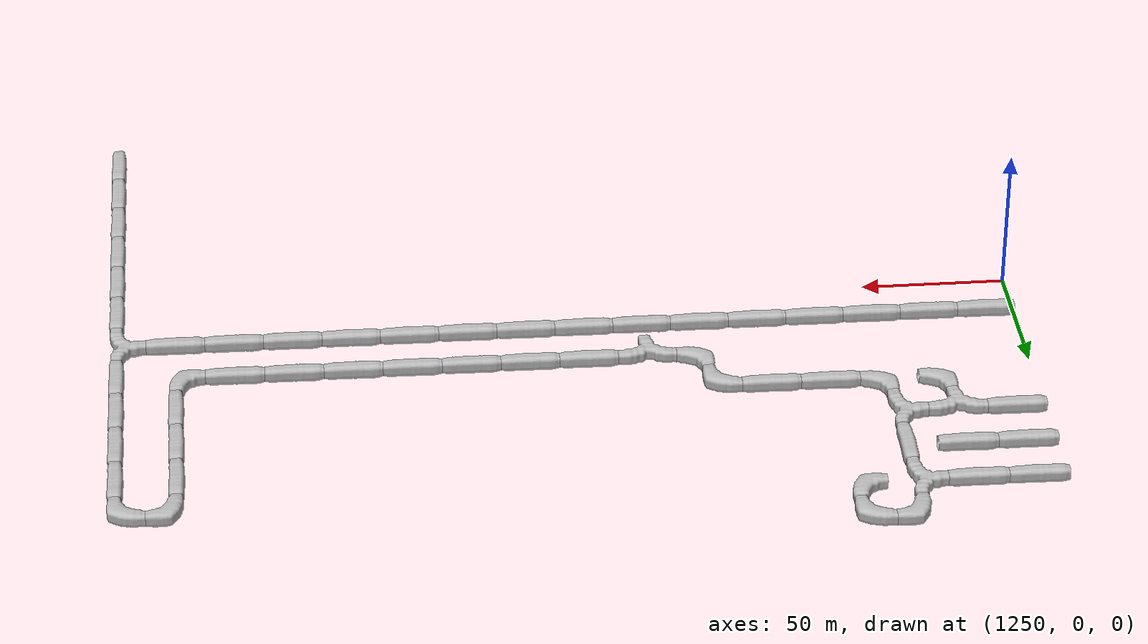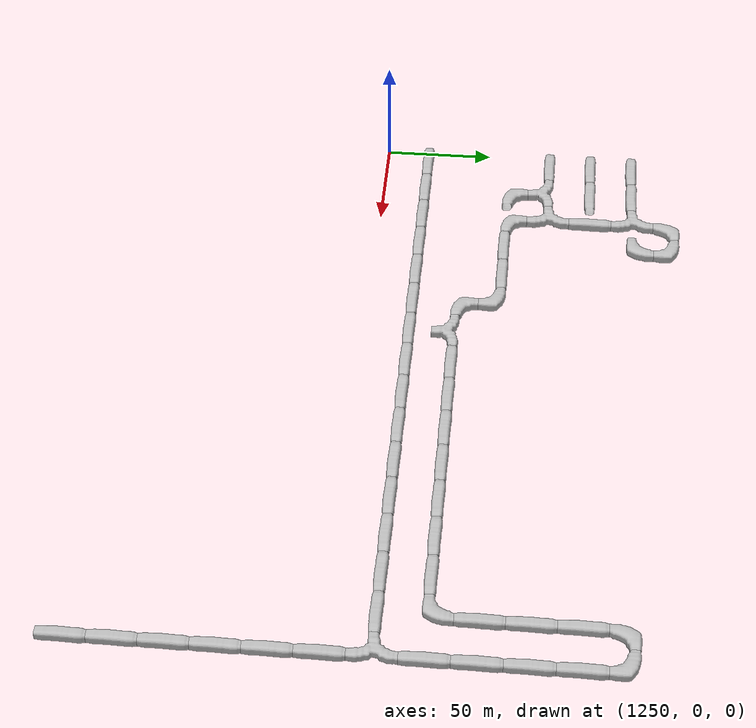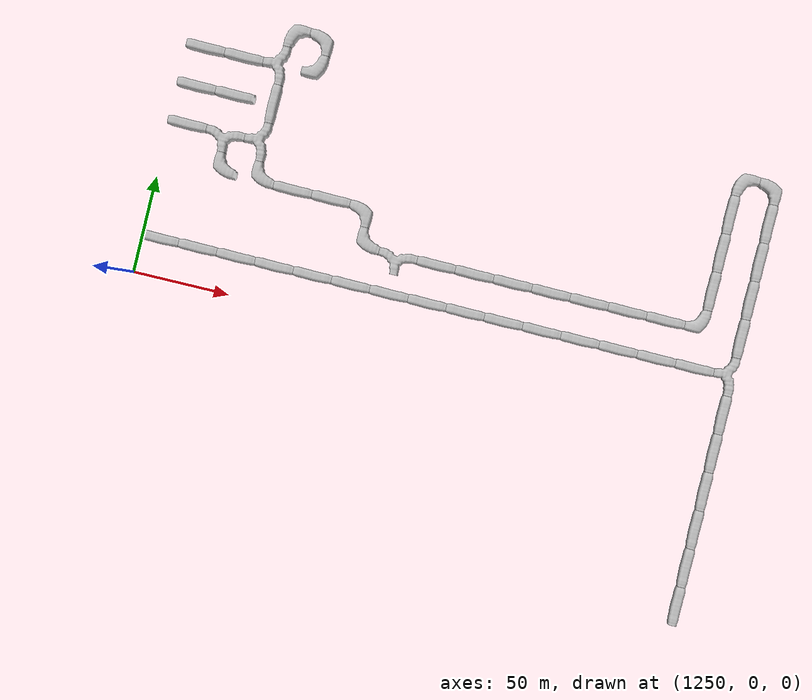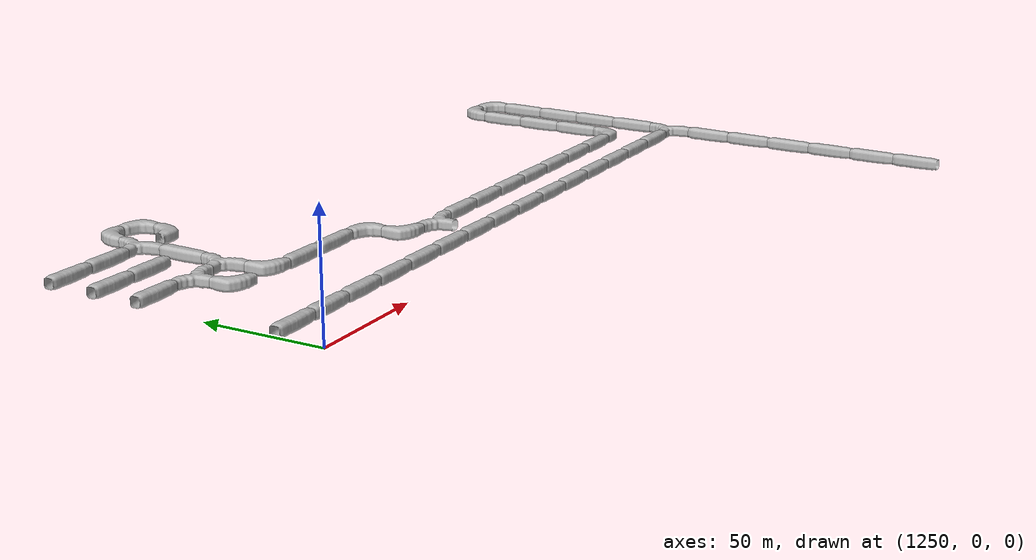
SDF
<sdf version="1.6">
 <world name="cave_32000_16">
  <include>
   <static>true</static>
   <name>cave_63_1</name>
   <pose>1260 20 0 0 0 1.5707963267948966</pose>
   <uri>model://cave_straight_20m</uri>
  </include>
  <include>
   <static>true</static>
   <name>cave_64_1</name>
   <pose>1280 20 0 0 0 1.5707963267948966</pose>
   <uri>model://cave_straight_20m</uri>
  </include>
  <include>
   <static>true</static>
   <name>cave_65_1</name>
   <pose>1300 20 0 0 0 1.5707963267948966</pose>
   <uri>model://cave_straight_20m</uri>
  </include>
  <include>
   <static>true</static>
   <name>cave_66_1</name>
   <pose>1320 20 0 0 0 1.5707963267948966</pose>
   <uri>model://cave_straight_20m</uri>
  </include>
  <include>
   <static>true</static>
   <name>cave_67_1</name>
   <pose>1340 20 0 0 0 1.5707963267948966</pose>
   <uri>model://cave_straight_20m</uri>
  </include>
  <include>
   <static>true</static>
   <name>cave_68_1</name>
   <pose>1360 20 0 0 0 1.5707963267948966</pose>
   <uri>model://cave_straight_20m</uri>
  </include>
  <include>
   <static>true</static>
   <name>cave_69_1</name>
   <pose>1380 20 0 0 0 1.5707963267948966</pose>
   <uri>model://cave_straight_20m</uri>
  </include>
  <include>
   <static>true</static>
   <name>cave_70_1</name>
   <pose>1400 20 0 0 0 1.5707963267948966</pose>
   <uri>model://cave_straight_20m</uri>
  </include>
  <include>
   <static>true</static>
   <name>cave_71_1</name>
   <pose>1420 20 0 0 0 1.5707963267948966</pose>
   <uri>model://cave_straight_20m</uri>
  </include>
  <include>
   <static>true</static>
   <name>cave_72_1</name>
   <pose>1440 20 0 0 0 1.5707963267948966</pose>
   <uri>model://cave_straight_20m</uri>
  </include>
  <include>
   <static>true</static>
   <name>cave_73_1</name>
   <pose>1460 20 0 0 0 1.5707963267948966</pose>
   <uri>model://cave_straight_20m</uri>
  </include>
  <include>
   <static>true</static>
   <name>cave_74_1</name>
   <pose>1480 20 0 0 0 1.5707963267948966</pose>
   <uri>model://cave_straight_20m</uri>
  </include>
  <include>
   <static>true</static>
   <name>cave_75_1</name>
   <pose>1500 20 0 0 0 1.5707963267948966</pose>
   <uri>model://cave_straight_20m</uri>
  </include>
  <include>
   <static>true</static>
   <name>cave_76_1</name>
   <pose>1520 20 0 0 0 1.5707963267948966</pose>
   <uri>model://cave_straight_20m</uri>
  </include>
  <include>
   <static>true</static>
   <name>cave_77_1</name>
   <pose>1540 20 0 0 0 1.5707963267948966</pose>
   <uri>model://cave_straight_20m</uri>
  </include>
  <include>
   <static>true</static>
   <name>cave_78_1</name>
   <pose>1560 20 0 0 0 1.5707963267948966</pose>
   <uri>model://cave_3way_20m</uri>
  </include>
  <include>
   <static>true</static>
   <name>cave_78_0</name>
   <pose>1560 0 0 0 0 0.0</pose>
   <uri>model://cave_straight_20m</uri>
  </include>
  <include>
   <static>true</static>
   <name>cave_78_-1</name>
   <pose>1560 -20 0 0 0 0.0</pose>
   <uri>model://cave_straight_20m</uri>
  </include>
  <include>
   <static>true</static>
   <name>cave_78_-2</name>
   <pose>1560 -40 0 0 0 0.0</pose>
   <uri>model://cave_straight_20m</uri>
  </include>
  <include>
   <static>true</static>
   <name>cave_78_-3</name>
   <pose>1560 -60 0 0 0 0.0</pose>
   <uri>model://cave_straight_20m</uri>
  </include>
  <include>
   <static>true</static>
   <name>cave_78_-4</name>
   <pose>1560 -80 0 0 0 0.0</pose>
   <uri>model://cave_straight_20m</uri>
  </include>
  <include>
   <static>true</static>
   <name>cave_78_-5</name>
   <pose>1560 -100 0 0 0 0.0</pose>
   <uri>model://cave_straight_20m</uri>
  </include>
  <include>
   <static>true</static>
   <name>cave_78_2</name>
   <pose>1560 40 0 0 0 0.0</pose>
   <uri>model://cave_straight_20m</uri>
  </include>
  <include>
   <static>true</static>
   <name>cave_78_3</name>
   <pose>1560 60 0 0 0 0.0</pose>
   <uri>model://cave_straight_20m</uri>
  </include>
  <include>
   <static>true</static>
   <name>cave_78_4</name>
   <pose>1560 80 0 0 0 0.0</pose>
   <uri>model://cave_straight_20m</uri>
  </include>
  <include>
   <static>true</static>
   <name>cave_78_5</name>
   <pose>1560 100 0 0 0 0.0</pose>
   <uri>model://cave_straight_20m</uri>
  </include>
  <include>
   <static>true</static>
   <name>cave_78_6</name>
   <pose>1560 120 0 0 0 3.141592653589793</pose>
   <uri>model://cave_L_20m</uri>
  </include>
  <include>
   <static>true</static>
   <name>cave_77_6</name>
   <pose>1540 120 0 0 0 -1.5707963267948966</pose>
   <uri>model://cave_L_20m</uri>
  </include>
  <include>
   <static>true</static>
   <name>cave_77_5</name>
   <pose>1540 100 0 0 0 0.0</pose>
   <uri>model://cave_straight_20m</uri>
  </include>
  <include>
   <static>true</static>
   <name>cave_77_4</name>
   <pose>1540 80 0 0 0 0.0</pose>
   <uri>model://cave_straight_20m</uri>
  </include>
  <include>
   <static>true</static>
   <name>cave_77_3</name>
   <pose>1540 60 0 0 0 0.0</pose>
   <uri>model://cave_straight_20m</uri>
  </include>
  <include>
   <static>true</static>
   <name>cave_77_2</name>
   <pose>1540 40 0 0 0 1.5707963267948966</pose>
   <uri>model://cave_L_20m</uri>
  </include>
  <include>
   <static>true</static>
   <name>cave_76_2</name>
   <pose>1520 40 0 0 0 1.5707963267948966</pose>
   <uri>model://cave_straight_20m</uri>
  </include>
  <include>
   <static>true</static>
   <name>cave_75_2</name>
   <pose>1500 40 0 0 0 1.5707963267948966</pose>
   <uri>model://cave_straight_20m</uri>
  </include>
  <include>
   <static>true</static>
   <name>cave_74_2</name>
   <pose>1480 40 0 0 0 1.5707963267948966</pose>
   <uri>model://cave_straight_20m</uri>
  </include>
  <include>
   <static>true</static>
   <name>cave_73_2</name>
   <pose>1460 40 0 0 0 1.5707963267948966</pose>
   <uri>model://cave_straight_20m</uri>
  </include>
  <include>
   <static>true</static>
   <name>cave_72_2</name>
   <pose>1440 40 0 0 0 1.5707963267948966</pose>
   <uri>model://cave_straight_20m</uri>
  </include>
  <include>
   <static>true</static>
   <name>cave_71_2</name>
   <pose>1420 40 0 0 0 1.5707963267948966</pose>
   <uri>model://cave_straight_20m</uri>
  </include>
  <include>
   <static>true</static>
   <name>cave_70_2</name>
   <pose>1400 40 0 0 0 1.5707963267948966</pose>
   <uri>model://cave_straight_20m</uri>
  </include>
  <include>
   <static>true</static>
   <name>cave_69_2</name>
   <pose>1380 40 0 0 0 3.141592653589793</pose>
   <uri>model://cave_3way_20m</uri>
  </include>
  <include>
   <static>true</static>
   <name>cave_68_2</name>
   <pose>1360 40 0 0 0 0.0</pose>
   <uri>model://cave_L_20m</uri>
  </include>
  <include>
   <static>true</static>
   <name>cave_68_3</name>
   <pose>1360 60 0 0 0 3.141592653589793</pose>
   <uri>model://cave_L_20m</uri>
  </include>
  <include>
   <static>true</static>
   <name>cave_67_3</name>
   <pose>1340 60 0 0 0 1.5707963267948966</pose>
   <uri>model://cave_straight_20m</uri>
  </include>
  <include>
   <static>true</static>
   <name>cave_66_3</name>
   <pose>1320 60 0 0 0 1.5707963267948966</pose>
   <uri>model://cave_straight_20m</uri>
  </include>
  <include>
   <static>true</static>
   <name>cave_65_3</name>
   <pose>1300 60 0 0 0 0.0</pose>
   <uri>model://cave_L_20m</uri>
  </include>
  <include>
   <static>true</static>
   <name>cave_65_4</name>
   <pose>1300 80 0 0 0 1.5707963267948966</pose>
   <uri>model://cave_3way_20m</uri>
  </include>
  <include>
   <static>true</static>
   <name>cave_64_4</name>
   <pose>1280 80 0 0 0 3.141592653589793</pose>
   <uri>model://cave_3way_20m</uri>
  </include>
  <include>
   <static>true</static>
   <name>cave_64_3</name>
   <pose>1280 60 0 0 0 0.0</pose>
   <uri>model://cave_L_20m</uri>
  </include>
  <include>
   <static>true</static>
   <name>cave_63_4</name>
   <pose>1260 80 0 0 0 1.5707963267948966</pose>
   <uri>model://cave_straight_20m</uri>
  </include>
  <include>
   <static>true</static>
   <name>cave_63_5</name>
   <pose>1260 100 0 0 0 1.5707963267948966</pose>
   <uri>model://cave_straight_20m</uri>
  </include>
  <include>
   <static>true</static>
   <name>cave_64_5</name>
   <pose>1280 100 0 0 0 1.5707963267948966</pose>
   <uri>model://cave_straight_20m</uri>
  </include>
  <include>
   <static>true</static>
   <name>cave_65_5</name>
   <pose>1300 100 0 0 0 0.0</pose>
   <uri>model://cave_straight_20m</uri>
  </include>
  <include>
   <static>true</static>
   <name>cave_65_6</name>
   <pose>1300 120 0 0 0 1.5707963267948966</pose>
   <uri>model://cave_3way_20m</uri>
  </include>
  <include>
   <static>true</static>
   <name>cave_64_6</name>
   <pose>1280 120 0 0 0 1.5707963267948966</pose>
   <uri>model://cave_straight_20m</uri>
  </include>
  <include>
   <static>true</static>
   <name>cave_63_6</name>
   <pose>1260 120 0 0 0 1.5707963267948966</pose>
   <uri>model://cave_straight_20m</uri>
  </include>
  <include>
   <static>true</static>
   <name>cave_65_7</name>
   <pose>1300 140 0 0 0 -1.5707963267948966</pose>
   <uri>model://cave_L_20m</uri>
  </include>
  <include>
   <static>true</static>
   <name>cave_66_7</name>
   <pose>1320 140 0 0 0 3.141592653589793</pose>
   <uri>model://cave_L_20m</uri>
  </include>
  <include>
   <static>true</static>
   <name>cave_66_6</name>
   <pose>1320 120 0 0 0 1.5707963267948966</pose>
   <uri>model://cave_L_20m</uri>
  </include>
 </world>
</sdf>
